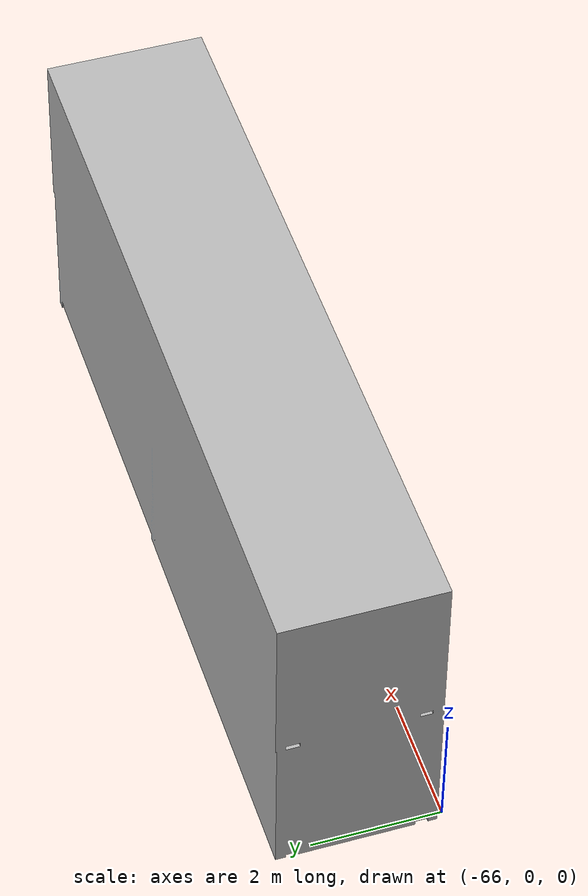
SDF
<?xml version='1.0'?>
<sdf version='1.4'>
  <model name="container-triple-stack">
        <static>true</static>
   <link name='chassis'>
            <pose>0 0 0 0 0 0</pose>
            <collision name='collision'>
              <geometry>
                 <mesh>
            <uri>model://container-triple-stack/model.dae</uri>
          </mesh>
              </geometry>
            </collision>

            <visual name='visual'>
              <geometry>
                <mesh>
                  <uri>model://container-triple-stack/model.dae</uri>
                </mesh>
              </geometry>
            </visual>
          </link>
  </model>
</sdf>
